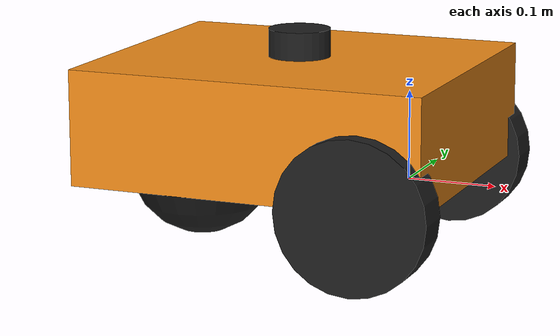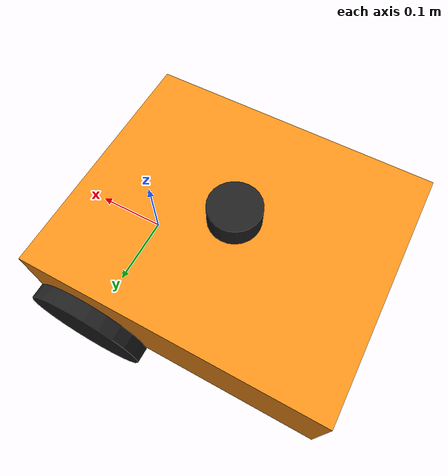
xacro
<?xml version="1.0"?>
<robot xmlns:xacro="http://www.ros.org/wiki/xacro" name="aspen">

  <xacro:arg name="prefix" default="" />

  <xacro:include filename="./aspen_description.urdf.xacro" />

  <xacro:include filename="./aspen.materials.xacro" />

  <xacro:include filename="./odrive.ros2_control.xacro" />

  <xacro:include filename="lidar.xacro" />

  <xacro:aspen prefix="$(arg prefix)" />

  <xacro:odrive_ros2_control
    name="aspen"
    joint0_name="$(arg prefix)left_wheel_joint"
    joint1_name="$(arg prefix)right_wheel_joint" />

</robot>

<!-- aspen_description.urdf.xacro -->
<robot xmlns:xacro="http://www.ros.org/wiki/xacro">

    <xacro:include filename="inertial_macros.xacro"/>

    <xacro:macro name="aspen" params="prefix">

    <!-- Constants for robot dimensions -->
    <xacro:property name="PI" value="3.1415926535897931" />
    <xacro:property name="base_mass" value="6.0" /> <!-- arbitrary value for base mass -->
    <xacro:property name="base_width" value="0.34" />
    <xacro:property name="base_length" value="0.404" />
    <xacro:property name="base_height" value="0.13" />
    <xacro:property name="wheel_mass" value="0.3" /> <!-- arbitrary value for wheel mass -->
    <xacro:property name="wheel_len" value="0.045" />
    <xacro:property name="wheel_radius" value="0.085" />
    <xacro:property name="caster_wheel_mass" value="0.1" /> <!-- arbitrary value for caster wheel
    mass -->
    <xacro:property name="caster_wheel_radius" value="0.015" />
    <xacro:property name="z_offset" value="0.065" /> <!-- Space between drive wheels and bottom
    of chassis -->
    <xacro:property name="drive_wheel_x_offset" value="0.014" />

    <xacro:property name="drive_wheel_y_offset" value="0.0016" />

        <!-- Base Link -->
        <link name="${prefix}base_link">

        </link>

        <!-- Base footprint link -->
        <joint name="base_footprint_link" type="fixed">
            <parent link="base_link"/>
            <child link="base_footprint"/>
            <origin xyz="0 0 0" rpy="0 0 0"/>
        </joint>

        <link name="base_footprint">
        </link>

        <joint name="chassis_joint" type="fixed">
            <parent link="base_link" />
            <child link="chassis" />
            <origin xyz="${-base_length/2-drive_wheel_x_offset+wheel_radius} 0 ${z_offset}" />
        </joint>

        <link name="chassis">
            <visual>
                <geometry>
                    <box size="${base_length} ${base_width} ${base_height}" />
                </geometry>
                <material name="orange" />
            </visual>

            <collision>
                <geometry>
                    <box size="${base_length} ${base_width} ${base_height}" />
                </geometry>
            </collision>

            <xacro:inertial_box mass="6.0" x="${base_length}" y="${base_width}" z="${base_height}">
                <origin xyz="${base_length/2} 0 0.065" rpy="0 0 0"/>
            </xacro:inertial_box>
        </link>

        <!-- left wheel Joint -->
        <joint name="${prefix}left_wheel_joint" type="continuous">
            <parent link="${prefix}base_link" />
            <child link="${prefix}left_wheel" />
            <origin xyz="0 ${base_width/2-drive_wheel_y_offset} 0" rpy="-${pi/2}  0 0" />
            <axis xyz="0 0 1" />
        </joint>

        <!-- left wheel Link -->
        <link name="${prefix}left_wheel">
            <visual>
                <geometry>
                    <cylinder length="${wheel_len}" radius="${wheel_radius}" />
                </geometry>
                <material name="black" />
            </visual>

            <collision>
                <geometry>
                    <cylinder radius="${wheel_radius}" length="${wheel_len}"/>
                </geometry>
            </collision>

            <xacro:inertial_cylinder mass="1.0" radius="${wheel_radius}" length="${wheel_len}">
                <origin xyz="0 0 0" rpy="0 0 0"/>
            </xacro:inertial_cylinder>
        </link>

        <!-- right wheel Joint -->
        <joint name="${prefix}right_wheel_joint" type="continuous">
            <parent link="${prefix}base_link" />
            <child link="${prefix}right_wheel" />
            <origin xyz="0 ${-base_width/2+drive_wheel_y_offset} 0" rpy="-${pi/2}  0 0" />
            <axis xyz="0 0 1" />
        </joint>

        <!-- right wheel Link -->
        <link name="${prefix}right_wheel">
            <visual>
                <geometry>
                    <cylinder length="${wheel_len}" radius="${wheel_radius}" />
                </geometry>
                <material name="black" />
            </visual>

            <collision>
                <geometry>
                    <cylinder radius="${wheel_radius}" length="${wheel_len}"/>
                </geometry>
            </collision>

            <xacro:inertial_cylinder mass="1.0" radius="${wheel_radius}" length="${wheel_len}">
                <origin xyz="0 0 0" rpy="0 0 0"/>
            </xacro:inertial_cylinder>
        </link>

<!-- Caster wheel -->
<joint name="caster_wheel_joint" type="fixed">
    <parent link="base_link"/>
    <child link="caster_wheel"/>
    <origin xyz="${-base_length+(0.170-0.018)} 0 0"/>
</joint>

<link name="caster_wheel">
    <visual>
        <geometry>
            <sphere radius="0.085"/>
        </geometry>
        <material name="black"/>
    </visual>

    <collision>
        <geometry>
            <sphere radius="0.085"/>
        </geometry>
    </collision>

    <xacro:inertial_sphere mass="0.2" radius="0.085">
        <origin xyz="0 0 0" rpy="0 0 0"/>
    </xacro:inertial_sphere>
</link>

    </xacro:macro>

</robot>

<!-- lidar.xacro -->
<robot xmlns:xacro="http://www.ros.org/wiki/xacro">

    <!-- Constants for robot dimensions -->
    <xacro:property name="PI" value="3.1415926535897931" />
    <xacro:property name="base_mass" value="6.0" /> <!-- arbitrary value for base mass -->
    <xacro:property name="base_width" value="0.34" />
    <xacro:property name="base_length" value="0.404" />
    <xacro:property name="base_height" value="0.13" />
    <xacro:property name="wheel_mass" value="0.3" /> <!-- arbitrary value for wheel mass -->
    <xacro:property name="wheel_len" value="0.045" />
    <xacro:property name="wheel_radius" value="0.085" />
    <xacro:property name="caster_wheel_mass" value="0.1" /> <!-- arbitrary value for caster wheel
    mass -->
    <xacro:property name="caster_wheel_radius" value="0.015" />
    <xacro:property name="z_offset" value="0.065" /> <!-- Space between drive wheels and bottom
    of chassis -->
    <xacro:property name="drive_wheel_x_offset" value="0.014" />

    <xacro:property name="drive_wheel_y_offset" value="0.0016" />

    <joint name="laser_joint" type="fixed">
        <parent link="chassis" />
        <child link="laser_frame"/>
        <origin xyz="0 0 ${base_height-wheel_radius+0.025}" rpy="0 0 0"/>
    </joint>

    <link name="laser_frame">
        <visual>
            <geometry>
                <cylinder radius="0.035" length="0.053"/>
            </geometry>
        </visual>

        <collision>
            <geometry>
                <cylinder radius="0.035" length="0.053"/>
            </geometry>
        </collision>

        <xacro:inertial_cylinder mass="0.05" radius="0.035" length="0.053">
            <origin xyz="0 0 0" rpy="0 0 0"/>
        </xacro:inertial_cylinder>
    </link>

    <gazebo reference="laser_frame">
        <material>Gazebo/Black</material>

        <sensor name="laser" type="ray">
            <pose> 0 0 0 0 0 0 </pose>
            <visualize>true</visualize>
            <update_rate>10</update_rate>
            <ray>
                <scan>
                    <horizontal>
                        <samples>360</samples>
                        <min_angle>-3.14</min_angle>
                        <max_angle>3.14</max_angle>
                    </horizontal>
                </scan>
                <range>
                    <min>0.3</min>
                    <max>12</max>
                </range>
            </ray>
            <plugin name="laser_controller" filename="libgazebo_ros_ray_sensor.so">
                <ros>
                    <argument>~/out:=scan</argument>
                </ros>
                <output_type>sensor_msgs/LaserScan</output_type>
                <frame_name>laser_frame</frame_name>
            </plugin>
        </sensor>
    </gazebo>

</robot>
